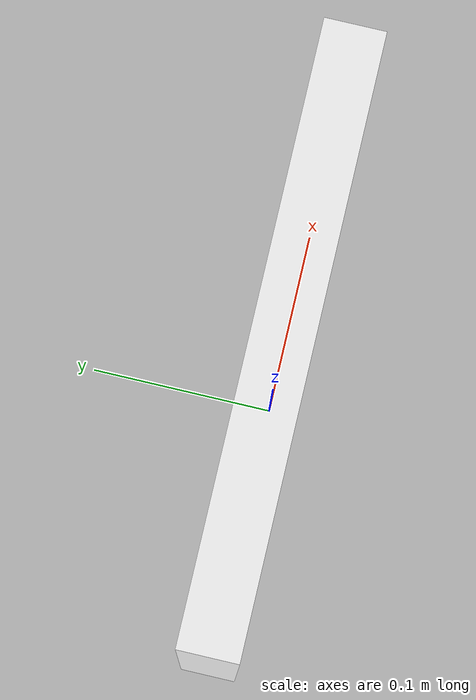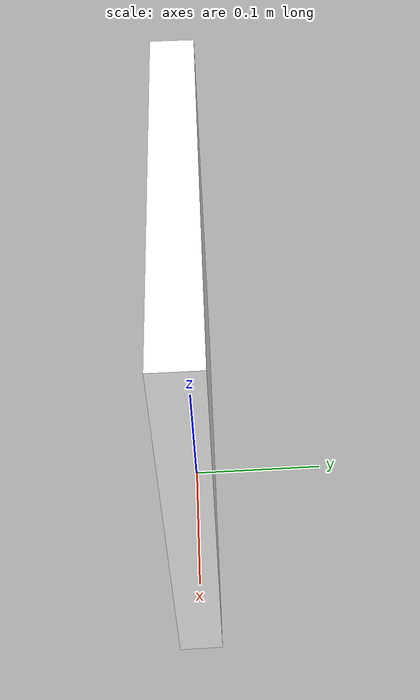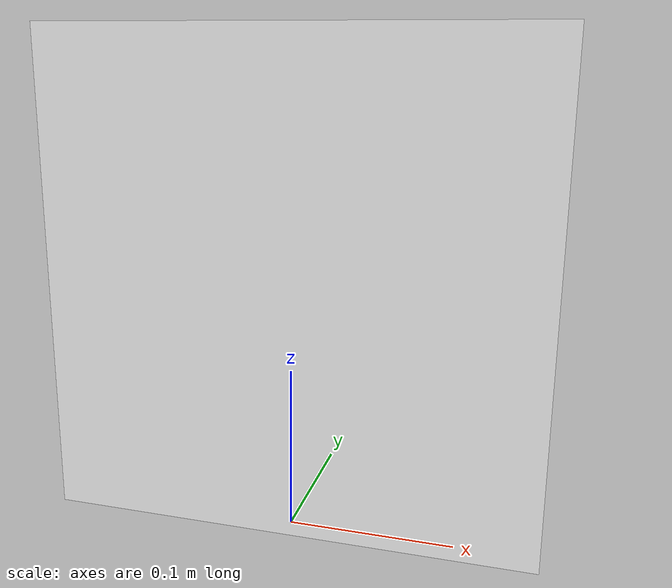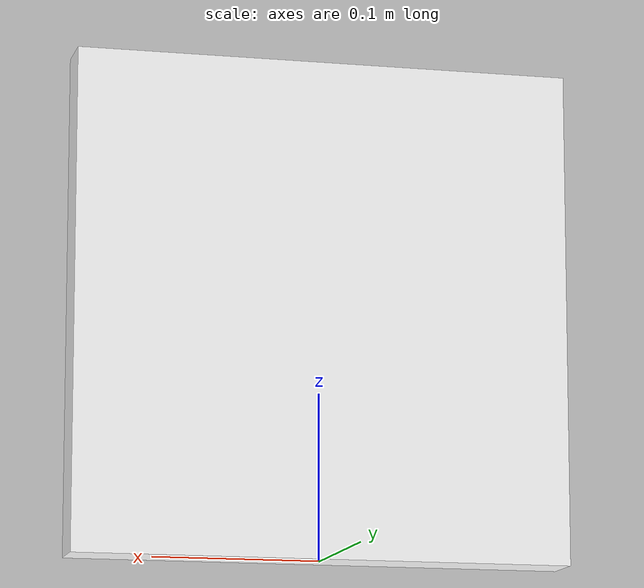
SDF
<?xml version='1.0'?>
<sdf version='1.5'>
  <model name='navigation_sign_right'>
    <pose >0 0 0.15 0 -0 0</pose>
    <link name='navigation_sign_right'>
      <visual name='visual'>
        <geometry>
          <box>
            <size>0.3 0.03 0.3</size>
          </box>
        </geometry>
        <material>
          <script>
            <uri>model://navigation_sign_right/materials/scripts</uri>
            <uri>model://navigation_sign_right/materials/textures</uri>
            <name>NavigationSign/Right</name>
          </script>
          <ambient>1 1 1 1</ambient>
          <diffuse>1 1 1 1</diffuse>
          <specular>0 0 0 1</specular>
          <emissive>1 1 1 0</emissive>
          <shader type='vertex'>
            <normal_map>__default__</normal_map>
          </shader>
        </material>
        <cast_shadows>1</cast_shadows>
        <transparency>0</transparency>
      </visual>
      <collision name='collision'>
        <laser_retro>0</laser_retro>
        <max_contacts>10</max_contacts>
        <geometry>
          <box>
            <size>0.3 0.03 0.3</size>
          </box>
        </geometry>
      </collision>
    </link>

    <static>1</static>
    <allow_auto_disable>1</allow_auto_disable>

  </model>
</sdf>
